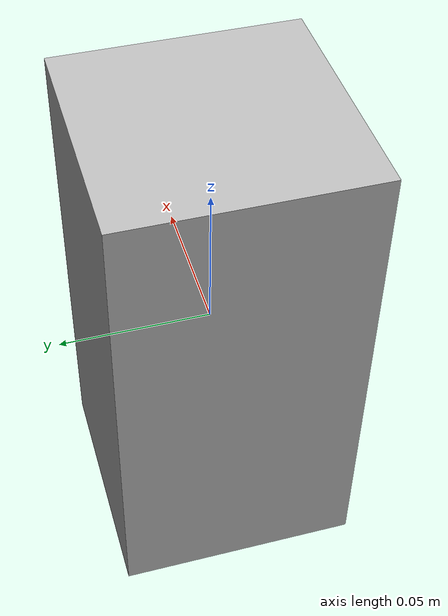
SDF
<?xml version="1.0" ?>
<sdf version="1.4">
  <model name="aruco_cube_8cm">
    <static>0</static>
    <link name="link">

      <inertial>
        <mass>0.05</mass>
        <inertia>
          <ixx>0.000052083</ixx>
          <ixy>0.0</ixy>
          <ixz>0.0</ixz>
          <iyy>0.000052083</iyy>
          <iyz>0.0</iyz>
          <izz>0.000020833</izz>
        </inertia>
      </inertial>

      <collision name="colision">
        <pose>0 0 0 0 0 0</pose>
          <geometry>
            <box>
              <size>0.05 0.05 0.1</size>
            </box>
          </geometry>
        <surface>
          <friction>
            <ode>
              <mu>30.0</mu>
              <mu2>30.0</mu2>
              <fdir1>0 0 0</fdir1>
            </ode>
          </friction>
          <contact>
            <ode>
              <kp>1000000.0</kp>
              <kd>100.0</kd>
              <min_depth>0.0025</min_depth>
              <max_vel>1.0</max_vel>
            </ode>
          </contact>
        </surface>
      </collision>

      <visual name="visual1">
        <pose>0 0 0 0 0 0</pose>
        <geometry>
          <mesh>
            <uri>model://aruco_cube_8cm/meshes/aruco_cube_8cm.dae</uri>
	    <scale> 1 1 2 </scale>
          </mesh>
        </geometry>
      </visual>

      <velocity_decay>
        <linear>0.000000</linear>
        <angular>0.000000</angular>
      </velocity_decay>
      <self_collide>0</self_collide>
      <kinematic>0</kinematic>
      <gravity>1</gravity>
    </link>
  </model>
</sdf>
